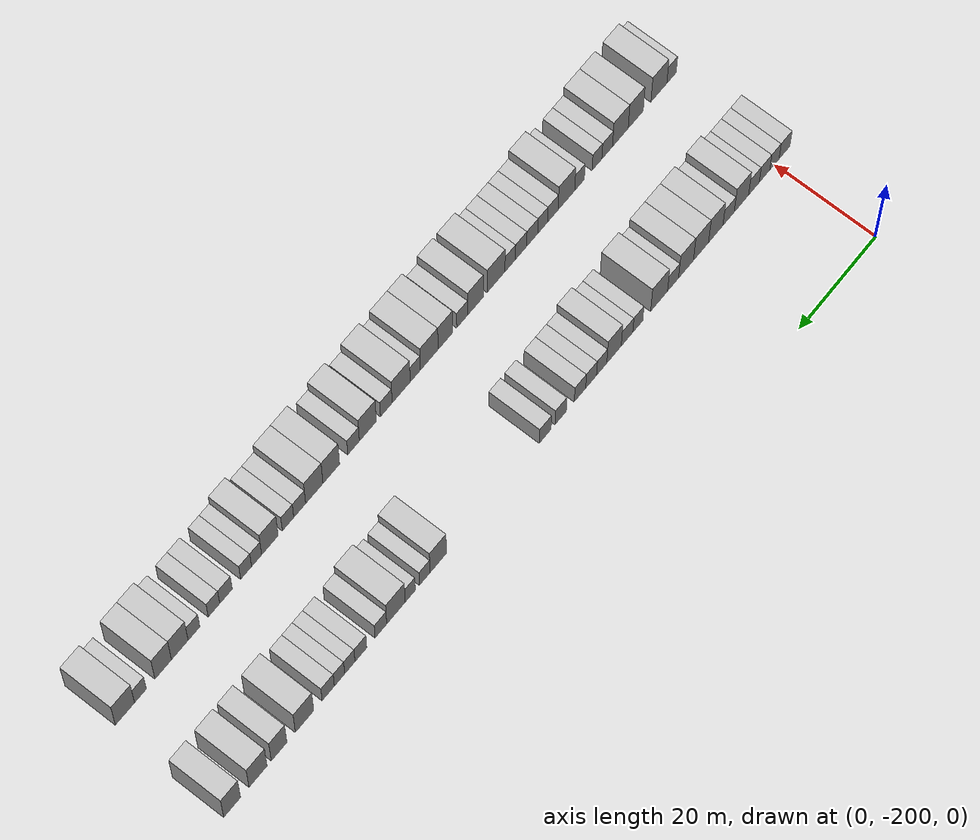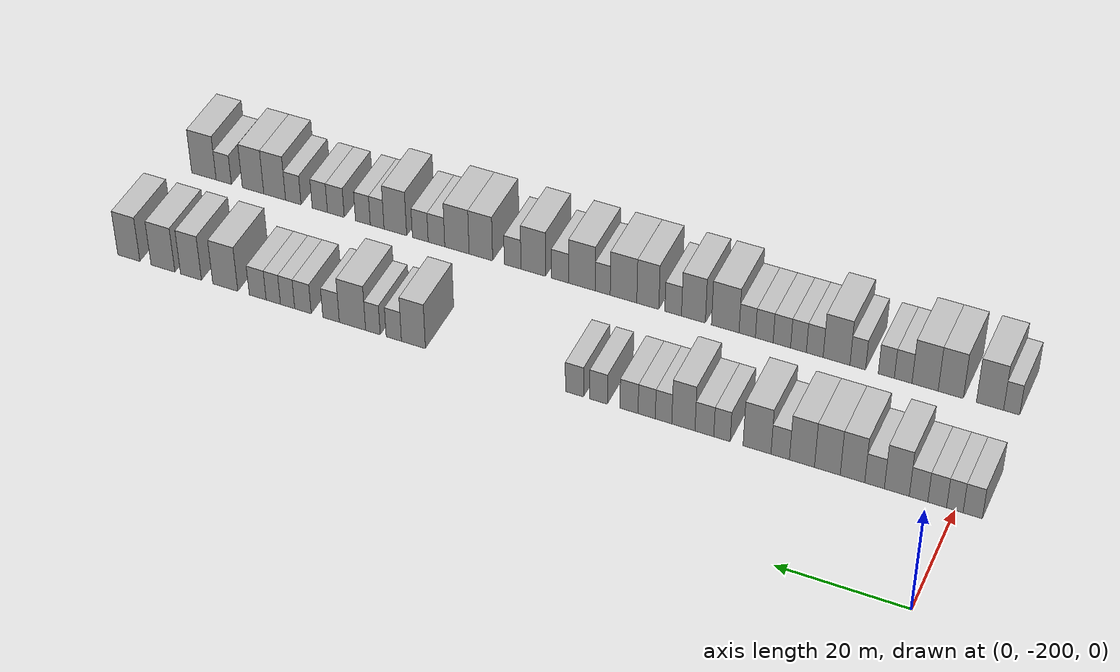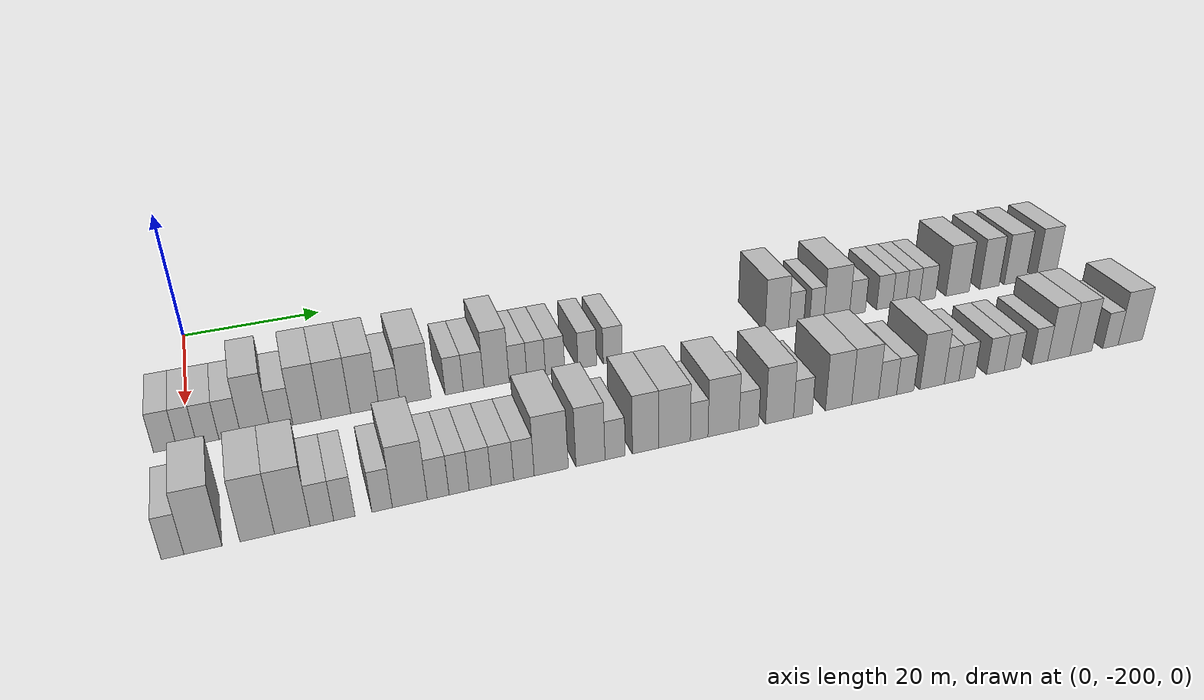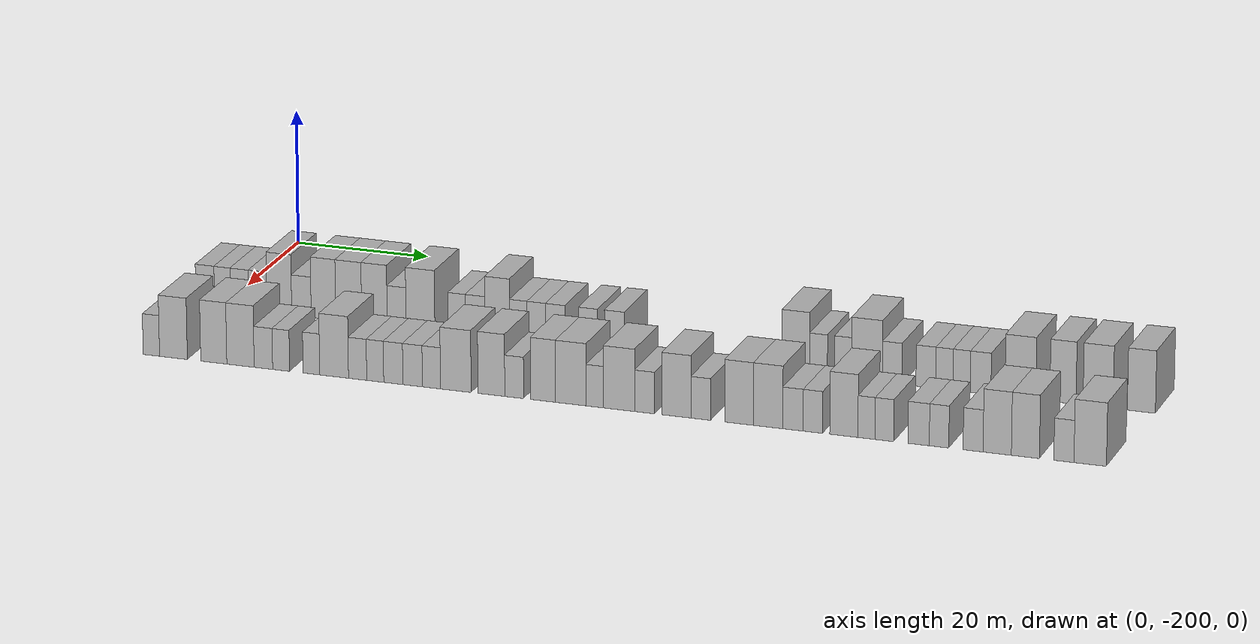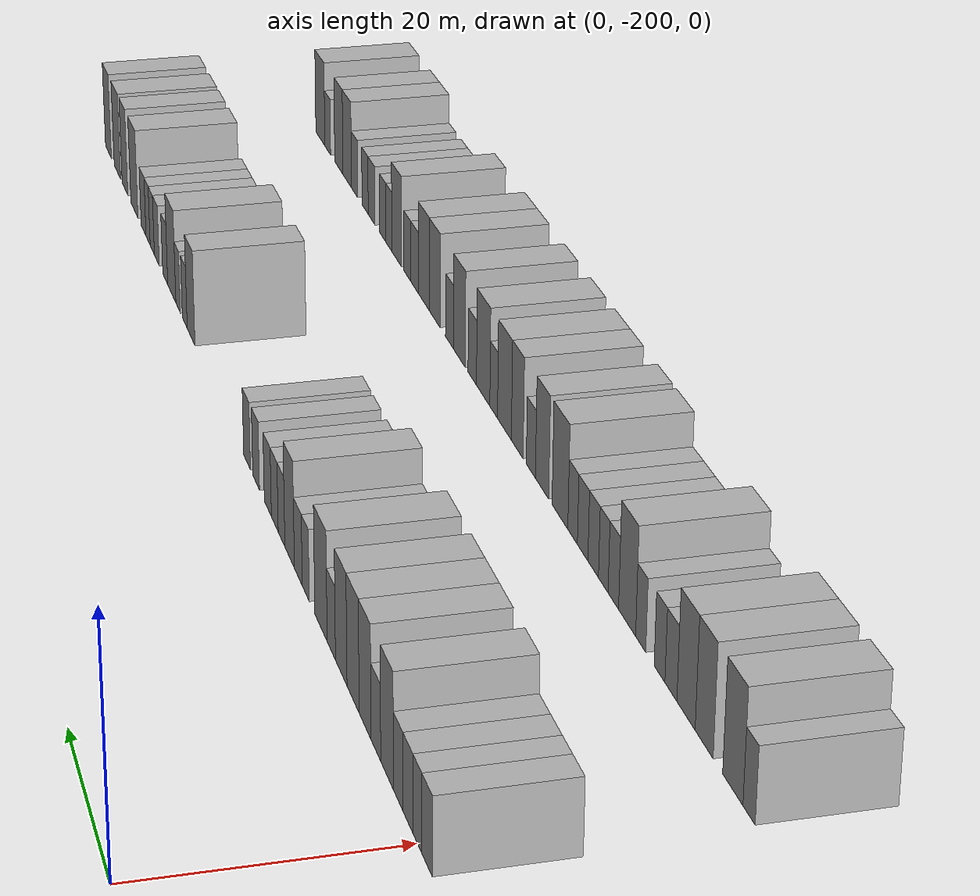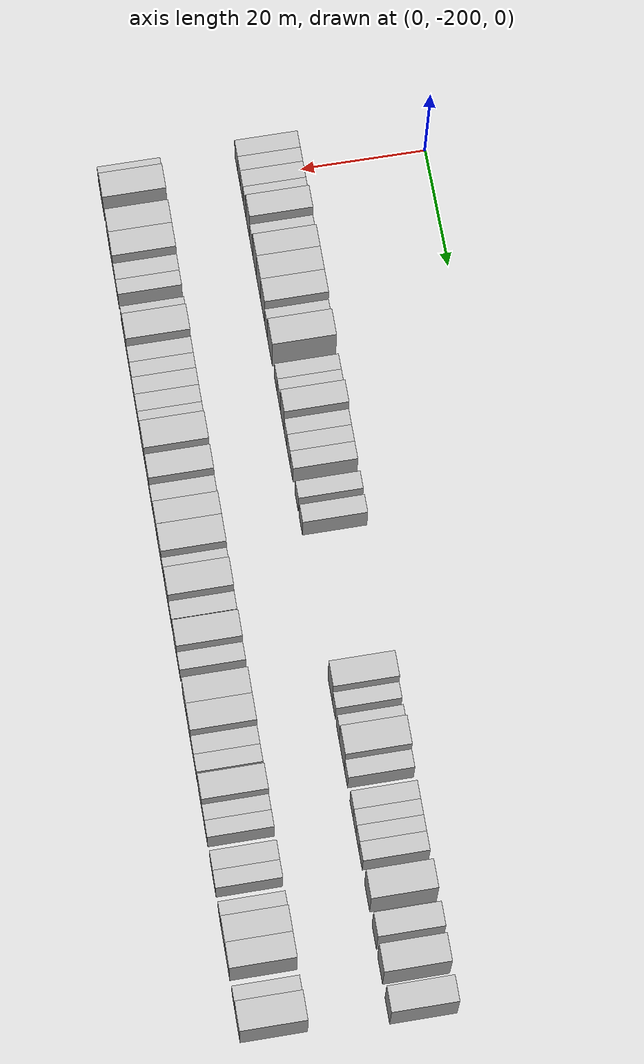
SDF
<sdf version="1.6">
 <world name="default">
  <model name="building_1">
   <static>1</static>
   <pose>25.0000 -202.5751 0 0.000000 0.000000 0.000000</pose>
   <link name="link">
    <pose>0 0 3.00 0 0 0</pose>
    <collision name="collision"><geometry><box><size>10.0000 2.8498 6.0000</size></box></geometry></collision>
    <visual name="visual">
     <cast_shadows>0</cast_shadows>
     <geometry><box><size>10.0000 2.8498 6.0000</size></box></geometry>
     <material>
      <script>
       <uri>model://HANNAS_wall/materials/scripts</uri>
       <uri>model://HANNAS_wall/materials/textures</uri>
       <name>vrc/HANNAS_wall</name>
      </script>
     </material>
    </visual>
   </link>
  </model>
  <model name="building_2">
   <static>1</static>
   <pose>25.0000 -199.9320 0 0.000000 0.000000 0.000000</pose>
   <link name="link">
    <pose>0 0 3.00 0 0 0</pose>
    <collision name="collision"><geometry><box><size>10.0000 2.4364 6.0000</size></box></geometry></collision>
    <visual name="visual">
     <cast_shadows>0</cast_shadows>
     <geometry><box><size>10.0000 2.4364 6.0000</size></box></geometry>
     <material>
      <script>
       <uri>model://HANNAS_wall/materials/scripts</uri>
       <uri>model://HANNAS_wall/materials/textures</uri>
       <name>vrc/HANNAS_wall</name>
      </script>
     </material>
    </visual>
   </link>
  </model>
  <model name="building_3">
   <static>1</static>
   <pose>25.0000 -197.3201 0 0.000000 0.000000 0.000000</pose>
   <link name="link">
    <pose>0 0 3.00 0 0 0</pose>
    <collision name="collision"><geometry><box><size>10.0000 2.7874 6.0000</size></box></geometry></collision>
    <visual name="visual">
     <cast_shadows>0</cast_shadows>
     <geometry><box><size>10.0000 2.7874 6.0000</size></box></geometry>
     <material>
      <script>
       <uri>model://HANNAS_wall/materials/scripts</uri>
       <uri>model://HANNAS_wall/materials/textures</uri>
       <name>vrc/HANNAS_wall</name>
      </script>
     </material>
    </visual>
   </link>
  </model>
  <model name="building_4">
   <static>1</static>
   <pose>25.0000 -194.5444 0 0.000000 0.000000 0.000000</pose>
   <link name="link">
    <pose>0 0 3.00 0 0 0</pose>
    <collision name="collision"><geometry><box><size>10.0000 2.7641 6.0000</size></box></geometry></collision>
    <visual name="visual">
     <cast_shadows>0</cast_shadows>
     <geometry><box><size>10.0000 2.7641 6.0000</size></box></geometry>
     <material>
      <script>
       <uri>model://HANNAS_wall/materials/scripts</uri>
       <uri>model://HANNAS_wall/materials/textures</uri>
       <name>vrc/HANNAS_wall</name>
      </script>
     </material>
    </visual>
   </link>
  </model>
  <model name="building_5">
   <static>1</static>
   <pose>25.0000 -191.2901 0 0.000000 0.000000 0.000000</pose>
   <link name="link">
    <pose>0 0 4.50 0 0 0</pose>
    <collision name="collision"><geometry><box><size>10.0000 3.7444 9.0000</size></box></geometry></collision>
    <visual name="visual">
     <cast_shadows>0</cast_shadows>
     <geometry><box><size>10.0000 3.7444 9.0000</size></box></geometry>
     <material>
      <script>
       <uri>model://HANNAS_wall/materials/scripts</uri>
       <uri>model://HANNAS_wall/materials/textures</uri>
       <name>vrc/HANNAS_wall</name>
      </script>
     </material>
    </visual>
   </link>
  </model>
  <model name="building_6">
   <static>1</static>
   <pose>25.0000 -187.9427 0 0.000000 0.000000 0.000000</pose>
   <link name="link">
    <pose>0 0 3.00 0 0 0</pose>
    <collision name="collision"><geometry><box><size>10.0000 2.9504 6.0000</size></box></geometry></collision>
    <visual name="visual">
     <cast_shadows>0</cast_shadows>
     <geometry><box><size>10.0000 2.9504 6.0000</size></box></geometry>
     <material>
      <script>
       <uri>model://HANNAS_wall/materials/scripts</uri>
       <uri>model://HANNAS_wall/materials/textures</uri>
       <name>vrc/HANNAS_wall</name>
      </script>
     </material>
    </visual>
   </link>
  </model>
  <model name="building_7">
   <static>1</static>
   <pose>25.0000 -184.6122 0 0.000000 0.000000 0.000000</pose>
   <link name="link">
    <pose>0 0 4.50 0 0 0</pose>
    <collision name="collision"><geometry><box><size>10.0000 3.7106 9.0000</size></box></geometry></collision>
    <visual name="visual">
     <cast_shadows>0</cast_shadows>
     <geometry><box><size>10.0000 3.7106 9.0000</size></box></geometry>
     <material>
      <script>
       <uri>model://HANNAS_wall/materials/scripts</uri>
       <uri>model://HANNAS_wall/materials/textures</uri>
       <name>vrc/HANNAS_wall</name>
      </script>
     </material>
    </visual>
   </link>
  </model>
  <model name="building_8">
   <static>1</static>
   <pose>25.0000 -180.7987 0 0.000000 0.000000 0.000000</pose>
   <link name="link">
    <pose>0 0 4.50 0 0 0</pose>
    <collision name="collision"><geometry><box><size>10.0000 3.9165 9.0000</size></box></geometry></collision>
    <visual name="visual">
     <cast_shadows>0</cast_shadows>
     <geometry><box><size>10.0000 3.9165 9.0000</size></box></geometry>
     <material>
      <script>
       <uri>model://HANNAS_wall/materials/scripts</uri>
       <uri>model://HANNAS_wall/materials/textures</uri>
       <name>vrc/HANNAS_wall</name>
      </script>
     </material>
    </visual>
   </link>
  </model>
  <model name="building_9">
   <static>1</static>
   <pose>25.0000 -176.9204 0 0.000000 0.000000 0.000000</pose>
   <link name="link">
    <pose>0 0 4.50 0 0 0</pose>
    <collision name="collision"><geometry><box><size>10.0000 3.8401 9.0000</size></box></geometry></collision>
    <visual name="visual">
     <cast_shadows>0</cast_shadows>
     <geometry><box><size>10.0000 3.8401 9.0000</size></box></geometry>
     <material>
      <script>
       <uri>model://HANNAS_wall/materials/scripts</uri>
       <uri>model://HANNAS_wall/materials/textures</uri>
       <name>vrc/HANNAS_wall</name>
      </script>
     </material>
    </visual>
   </link>
  </model>
  <model name="building_10">
   <static>1</static>
   <pose>25.0000 -173.5863 0 0.000000 0.000000 0.000000</pose>
   <link name="link">
    <pose>0 0 3.00 0 0 0</pose>
    <collision name="collision"><geometry><box><size>10.0000 2.8281 6.0000</size></box></geometry></collision>
    <visual name="visual">
     <cast_shadows>0</cast_shadows>
     <geometry><box><size>10.0000 2.8281 6.0000</size></box></geometry>
     <material>
      <script>
       <uri>model://HANNAS_wall/materials/scripts</uri>
       <uri>model://HANNAS_wall/materials/textures</uri>
       <name>vrc/HANNAS_wall</name>
      </script>
     </material>
    </visual>
   </link>
  </model>
  <model name="building_11">
   <static>1</static>
   <pose>25.0000 -170.0081 0 0.000000 0.000000 0.000000</pose>
   <link name="link">
    <pose>0 0 4.50 0 0 0</pose>
    <collision name="collision"><geometry><box><size>10.0000 4.3283 9.0000</size></box></geometry></collision>
    <visual name="visual">
     <cast_shadows>0</cast_shadows>
     <geometry><box><size>10.0000 4.3283 9.0000</size></box></geometry>
     <material>
      <script>
       <uri>model://HANNAS_wall/materials/scripts</uri>
       <uri>model://HANNAS_wall/materials/textures</uri>
       <name>vrc/HANNAS_wall</name>
      </script>
     </material>
    </visual>
   </link>
  </model>
  <model name="building_12">
   <static>1</static>
   <pose>25.0000 -164.5643 0 0.000000 0.000000 0.000000</pose>
   <link name="link">
    <pose>0 0 3.00 0 0 0</pose>
    <collision name="collision"><geometry><box><size>10.0000 2.5592 6.0000</size></box></geometry></collision>
    <visual name="visual">
     <cast_shadows>0</cast_shadows>
     <geometry><box><size>10.0000 2.5592 6.0000</size></box></geometry>
     <material>
      <script>
       <uri>model://HANNAS_wall/materials/scripts</uri>
       <uri>model://HANNAS_wall/materials/textures</uri>
       <name>vrc/HANNAS_wall</name>
      </script>
     </material>
    </visual>
   </link>
  </model>
  <model name="building_13">
   <static>1</static>
   <pose>25.0000 -161.8121 0 0.000000 0.000000 0.000000</pose>
   <link name="link">
    <pose>0 0 3.00 0 0 0</pose>
    <collision name="collision"><geometry><box><size>10.0000 2.9453 6.0000</size></box></geometry></collision>
    <visual name="visual">
     <cast_shadows>0</cast_shadows>
     <geometry><box><size>10.0000 2.9453 6.0000</size></box></geometry>
     <material>
      <script>
       <uri>model://HANNAS_wall/materials/scripts</uri>
       <uri>model://HANNAS_wall/materials/textures</uri>
       <name>vrc/HANNAS_wall</name>
      </script>
     </material>
    </visual>
   </link>
  </model>
  <model name="building_14">
   <static>1</static>
   <pose>25.0000 -158.5109 0 0.000000 0.000000 0.000000</pose>
   <link name="link">
    <pose>0 0 4.50 0 0 0</pose>
    <collision name="collision"><geometry><box><size>10.0000 3.6571 9.0000</size></box></geometry></collision>
    <visual name="visual">
     <cast_shadows>0</cast_shadows>
     <geometry><box><size>10.0000 3.6571 9.0000</size></box></geometry>
     <material>
      <script>
       <uri>model://HANNAS_wall/materials/scripts</uri>
       <uri>model://HANNAS_wall/materials/textures</uri>
       <name>vrc/HANNAS_wall</name>
      </script>
     </material>
    </visual>
   </link>
  </model>
  <model name="building_15">
   <static>1</static>
   <pose>25.0000 -155.3823 0 0.000000 0.000000 0.000000</pose>
   <link name="link">
    <pose>0 0 3.00 0 0 0</pose>
    <collision name="collision"><geometry><box><size>10.0000 2.6001 6.0000</size></box></geometry></collision>
    <visual name="visual">
     <cast_shadows>0</cast_shadows>
     <geometry><box><size>10.0000 2.6001 6.0000</size></box></geometry>
     <material>
      <script>
       <uri>model://HANNAS_wall/materials/scripts</uri>
       <uri>model://HANNAS_wall/materials/textures</uri>
       <name>vrc/HANNAS_wall</name>
      </script>
     </material>
    </visual>
   </link>
  </model>
  <model name="building_16">
   <static>1</static>
   <pose>25.0000 -152.7136 0 0.000000 0.000000 0.000000</pose>
   <link name="link">
    <pose>0 0 3.00 0 0 0</pose>
    <collision name="collision"><geometry><box><size>10.0000 2.7374 6.0000</size></box></geometry></collision>
    <visual name="visual">
     <cast_shadows>0</cast_shadows>
     <geometry><box><size>10.0000 2.7374 6.0000</size></box></geometry>
     <material>
      <script>
       <uri>model://HANNAS_wall/materials/scripts</uri>
       <uri>model://HANNAS_wall/materials/textures</uri>
       <name>vrc/HANNAS_wall</name>
      </script>
     </material>
    </visual>
   </link>
  </model>
  <model name="building_17">
   <static>1</static>
   <pose>25.0000 -149.9025 0 0.000000 0.000000 0.000000</pose>
   <link name="link">
    <pose>0 0 3.00 0 0 0</pose>
    <collision name="collision"><geometry><box><size>10.0000 2.8847 6.0000</size></box></geometry></collision>
    <visual name="visual">
     <cast_shadows>0</cast_shadows>
     <geometry><box><size>10.0000 2.8847 6.0000</size></box></geometry>
     <material>
      <script>
       <uri>model://HANNAS_wall/materials/scripts</uri>
       <uri>model://HANNAS_wall/materials/textures</uri>
       <name>vrc/HANNAS_wall</name>
      </script>
     </material>
    </visual>
   </link>
  </model>
  <model name="building_18">
   <static>1</static>
   <pose>25.0000 -145.0434 0 0.000000 0.000000 0.000000</pose>
   <link name="link">
    <pose>0 0 3.00 0 0 0</pose>
    <collision name="collision"><geometry><box><size>10.0000 2.8335 6.0000</size></box></geometry></collision>
    <visual name="visual">
     <cast_shadows>0</cast_shadows>
     <geometry><box><size>10.0000 2.8335 6.0000</size></box></geometry>
     <material>
      <script>
       <uri>model://HANNAS_wall/materials/scripts</uri>
       <uri>model://HANNAS_wall/materials/textures</uri>
       <name>vrc/HANNAS_wall</name>
      </script>
     </material>
    </visual>
   </link>
  </model>
  <model name="building_19">
   <static>1</static>
   <pose>25.0000 -141.1644 0 0.000000 0.000000 0.000000</pose>
   <link name="link">
    <pose>0 0 3.00 0 0 0</pose>
    <collision name="collision"><geometry><box><size>10.0000 2.9245 6.0000</size></box></geometry></collision>
    <visual name="visual">
     <cast_shadows>0</cast_shadows>
     <geometry><box><size>10.0000 2.9245 6.0000</size></box></geometry>
     <material>
      <script>
       <uri>model://HANNAS_wall/materials/scripts</uri>
       <uri>model://HANNAS_wall/materials/textures</uri>
       <name>vrc/HANNAS_wall</name>
      </script>
     </material>
    </visual>
   </link>
  </model>
  <model name="building_20">
   <static>1</static>
   <pose>25.0000 -114.6711 0 0.000000 0.000000 0.000000</pose>
   <link name="link">
    <pose>0 0 4.50 0 0 0</pose>
    <collision name="collision"><geometry><box><size>10.0000 4.0207 9.0000</size></box></geometry></collision>
    <visual name="visual">
     <cast_shadows>0</cast_shadows>
     <geometry><box><size>10.0000 4.0207 9.0000</size></box></geometry>
     <material>
      <script>
       <uri>model://HANNAS_wall/materials/scripts</uri>
       <uri>model://HANNAS_wall/materials/textures</uri>
       <name>vrc/HANNAS_wall</name>
      </script>
     </material>
    </visual>
   </link>
  </model>
  <model name="building_21">
   <static>1</static>
   <pose>25.0000 -111.3727 0 0.000000 0.000000 0.000000</pose>
   <link name="link">
    <pose>0 0 3.00 0 0 0</pose>
    <collision name="collision"><geometry><box><size>10.0000 2.5760 6.0000</size></box></geometry></collision>
    <visual name="visual">
     <cast_shadows>0</cast_shadows>
     <geometry><box><size>10.0000 2.5760 6.0000</size></box></geometry>
     <material>
      <script>
       <uri>model://HANNAS_wall/materials/scripts</uri>
       <uri>model://HANNAS_wall/materials/textures</uri>
       <name>vrc/HANNAS_wall</name>
      </script>
     </material>
    </visual>
   </link>
  </model>
  <model name="building_22">
   <static>1</static>
   <pose>25.0000 -107.8508 0 0.000000 0.000000 0.000000</pose>
   <link name="link">
    <pose>0 0 3.00 0 0 0</pose>
    <collision name="collision"><geometry><box><size>10.0000 2.4678 6.0000</size></box></geometry></collision>
    <visual name="visual">
     <cast_shadows>0</cast_shadows>
     <geometry><box><size>10.0000 2.4678 6.0000</size></box></geometry>
     <material>
      <script>
       <uri>model://HANNAS_wall/materials/scripts</uri>
       <uri>model://HANNAS_wall/materials/textures</uri>
       <name>vrc/HANNAS_wall</name>
      </script>
     </material>
    </visual>
   </link>
  </model>
  <model name="building_23">
   <static>1</static>
   <pose>25.0000 -104.3762 0 0.000000 0.000000 0.000000</pose>
   <link name="link">
    <pose>0 0 4.50 0 0 0</pose>
    <collision name="collision"><geometry><box><size>10.0000 4.4815 9.0000</size></box></geometry></collision>
    <visual name="visual">
     <cast_shadows>0</cast_shadows>
     <geometry><box><size>10.0000 4.4815 9.0000</size></box></geometry>
     <material>
      <script>
       <uri>model://HANNAS_wall/materials/scripts</uri>
       <uri>model://HANNAS_wall/materials/textures</uri>
       <name>vrc/HANNAS_wall</name>
      </script>
     </material>
    </visual>
   </link>
  </model>
  <model name="building_24">
   <static>1</static>
   <pose>25.0000 -100.7256 0 0.000000 0.000000 0.000000</pose>
   <link name="link">
    <pose>0 0 3.00 0 0 0</pose>
    <collision name="collision"><geometry><box><size>10.0000 2.8197 6.0000</size></box></geometry></collision>
    <visual name="visual">
     <cast_shadows>0</cast_shadows>
     <geometry><box><size>10.0000 2.8197 6.0000</size></box></geometry>
     <material>
      <script>
       <uri>model://HANNAS_wall/materials/scripts</uri>
       <uri>model://HANNAS_wall/materials/textures</uri>
       <name>vrc/HANNAS_wall</name>
      </script>
     </material>
    </visual>
   </link>
  </model>
  <model name="building_25">
   <static>1</static>
   <pose>25.0000 -95.8948 0 0.000000 0.000000 0.000000</pose>
   <link name="link">
    <pose>0 0 3.00 0 0 0</pose>
    <collision name="collision"><geometry><box><size>10.0000 2.8417 6.0000</size></box></geometry></collision>
    <visual name="visual">
     <cast_shadows>0</cast_shadows>
     <geometry><box><size>10.0000 2.8417 6.0000</size></box></geometry>
     <material>
      <script>
       <uri>model://HANNAS_wall/materials/scripts</uri>
       <uri>model://HANNAS_wall/materials/textures</uri>
       <name>vrc/HANNAS_wall</name>
      </script>
     </material>
    </visual>
   </link>
  </model>
  <model name="building_26">
   <static>1</static>
   <pose>25.0000 -93.2428 0 0.000000 0.000000 0.000000</pose>
   <link name="link">
    <pose>0 0 3.00 0 0 0</pose>
    <collision name="collision"><geometry><box><size>10.0000 2.4623 6.0000</size></box></geometry></collision>
    <visual name="visual">
     <cast_shadows>0</cast_shadows>
     <geometry><box><size>10.0000 2.4623 6.0000</size></box></geometry>
     <material>
      <script>
       <uri>model://HANNAS_wall/materials/scripts</uri>
       <uri>model://HANNAS_wall/materials/textures</uri>
       <name>vrc/HANNAS_wall</name>
      </script>
     </material>
    </visual>
   </link>
  </model>
  <model name="building_27">
   <static>1</static>
   <pose>25.0000 -90.7668 0 0.000000 0.000000 0.000000</pose>
   <link name="link">
    <pose>0 0 3.00 0 0 0</pose>
    <collision name="collision"><geometry><box><size>10.0000 2.4897 6.0000</size></box></geometry></collision>
    <visual name="visual">
     <cast_shadows>0</cast_shadows>
     <geometry><box><size>10.0000 2.4897 6.0000</size></box></geometry>
     <material>
      <script>
       <uri>model://HANNAS_wall/materials/scripts</uri>
       <uri>model://HANNAS_wall/materials/textures</uri>
       <name>vrc/HANNAS_wall</name>
      </script>
     </material>
    </visual>
   </link>
  </model>
  <model name="building_28">
   <static>1</static>
   <pose>25.0000 -88.0541 0 0.000000 0.000000 0.000000</pose>
   <link name="link">
    <pose>0 0 3.00 0 0 0</pose>
    <collision name="collision"><geometry><box><size>10.0000 2.9357 6.0000</size></box></geometry></collision>
    <visual name="visual">
     <cast_shadows>0</cast_shadows>
     <geometry><box><size>10.0000 2.9357 6.0000</size></box></geometry>
     <material>
      <script>
       <uri>model://HANNAS_wall/materials/scripts</uri>
       <uri>model://HANNAS_wall/materials/textures</uri>
       <name>vrc/HANNAS_wall</name>
      </script>
     </material>
    </visual>
   </link>
  </model>
  <model name="building_29">
   <static>1</static>
   <pose>25.0000 -82.3936 0 0.000000 0.000000 0.000000</pose>
   <link name="link">
    <pose>0 0 4.50 0 0 0</pose>
    <collision name="collision"><geometry><box><size>10.0000 4.3852 9.0000</size></box></geometry></collision>
    <visual name="visual">
     <cast_shadows>0</cast_shadows>
     <geometry><box><size>10.0000 4.3852 9.0000</size></box></geometry>
     <material>
      <script>
       <uri>model://HANNAS_wall/materials/scripts</uri>
       <uri>model://HANNAS_wall/materials/textures</uri>
       <name>vrc/HANNAS_wall</name>
      </script>
     </material>
    </visual>
   </link>
  </model>
  <model name="building_30">
   <static>1</static>
   <pose>25.0000 -76.3492 0 0.000000 0.000000 0.000000</pose>
   <link name="link">
    <pose>0 0 4.50 0 0 0</pose>
    <collision name="collision"><geometry><box><size>10.0000 3.7037 9.0000</size></box></geometry></collision>
    <visual name="visual">
     <cast_shadows>0</cast_shadows>
     <geometry><box><size>10.0000 3.7037 9.0000</size></box></geometry>
     <material>
      <script>
       <uri>model://HANNAS_wall/materials/scripts</uri>
       <uri>model://HANNAS_wall/materials/textures</uri>
       <name>vrc/HANNAS_wall</name>
      </script>
     </material>
    </visual>
   </link>
  </model>
  <model name="building_31">
   <static>1</static>
   <pose>25.0000 -71.3695 0 0.000000 0.000000 0.000000</pose>
   <link name="link">
    <pose>0 0 4.50 0 0 0</pose>
    <collision name="collision"><geometry><box><size>10.0000 4.2556 9.0000</size></box></geometry></collision>
    <visual name="visual">
     <cast_shadows>0</cast_shadows>
     <geometry><box><size>10.0000 4.2556 9.0000</size></box></geometry>
     <material>
      <script>
       <uri>model://HANNAS_wall/materials/scripts</uri>
       <uri>model://HANNAS_wall/materials/textures</uri>
       <name>vrc/HANNAS_wall</name>
      </script>
     </material>
    </visual>
   </link>
  </model>
  <model name="building_32">
   <static>1</static>
   <pose>25.0000 -65.2629 0 0.000000 0.000000 0.000000</pose>
   <link name="link">
    <pose>0 0 4.50 0 0 0</pose>
    <collision name="collision"><geometry><box><size>10.0000 3.9575 9.0000</size></box></geometry></collision>
    <visual name="visual">
     <cast_shadows>0</cast_shadows>
     <geometry><box><size>10.0000 3.9575 9.0000</size></box></geometry>
     <material>
      <script>
       <uri>model://HANNAS_wall/materials/scripts</uri>
       <uri>model://HANNAS_wall/materials/textures</uri>
       <name>vrc/HANNAS_wall</name>
      </script>
     </material>
    </visual>
   </link>
  </model>
  <model name="building_103">
   <static>1</static>
   <pose>47.0000 -201.7735 0 0.000000 0.000000 0.000000</pose>
   <link name="link">
    <pose>0 0 3.00 0 0 0</pose>
    <collision name="collision"><geometry><box><size>10.0000 2.4530 6.0000</size></box></geometry></collision>
    <visual name="visual">
     <cast_shadows>0</cast_shadows>
     <geometry><box><size>10.0000 2.4530 6.0000</size></box></geometry>
     <material>
      <script>
       <uri>model://HANNAS_wall/materials/scripts</uri>
       <uri>model://HANNAS_wall/materials/textures</uri>
       <name>vrc/HANNAS_wall</name>
      </script>
     </material>
    </visual>
   </link>
  </model>
  <model name="building_104">
   <static>1</static>
   <pose>47.0000 -198.4619 0 0.000000 0.000000 0.000000</pose>
   <link name="link">
    <pose>0 0 4.50 0 0 0</pose>
    <collision name="collision"><geometry><box><size>10.0000 4.1702 9.0000</size></box></geometry></collision>
    <visual name="visual">
     <cast_shadows>0</cast_shadows>
     <geometry><box><size>10.0000 4.1702 9.0000</size></box></geometry>
     <material>
      <script>
       <uri>model://HANNAS_wall/materials/scripts</uri>
       <uri>model://HANNAS_wall/materials/textures</uri>
       <name>vrc/HANNAS_wall</name>
      </script>
     </material>
    </visual>
   </link>
  </model>
  <model name="building_105">
   <static>1</static>
   <pose>47.0000 -192.4269 0 0.000000 0.000000 0.000000</pose>
   <link name="link">
    <pose>0 0 4.50 0 0 0</pose>
    <collision name="collision"><geometry><box><size>10.0000 3.8998 9.0000</size></box></geometry></collision>
    <visual name="visual">
     <cast_shadows>0</cast_shadows>
     <geometry><box><size>10.0000 3.8998 9.0000</size></box></geometry>
     <material>
      <script>
       <uri>model://HANNAS_wall/materials/scripts</uri>
       <uri>model://HANNAS_wall/materials/textures</uri>
       <name>vrc/HANNAS_wall</name>
      </script>
     </material>
    </visual>
   </link>
  </model>
  <model name="building_106">
   <static>1</static>
   <pose>47.0000 -188.4391 0 0.000000 0.000000 0.000000</pose>
   <link name="link">
    <pose>0 0 4.50 0 0 0</pose>
    <collision name="collision"><geometry><box><size>10.0000 4.0759 9.0000</size></box></geometry></collision>
    <visual name="visual">
     <cast_shadows>0</cast_shadows>
     <geometry><box><size>10.0000 4.0759 9.0000</size></box></geometry>
     <material>
      <script>
       <uri>model://HANNAS_wall/materials/scripts</uri>
       <uri>model://HANNAS_wall/materials/textures</uri>
       <name>vrc/HANNAS_wall</name>
      </script>
     </material>
    </visual>
   </link>
  </model>
  <model name="building_107">
   <static>1</static>
   <pose>47.0000 -185.0261 0 0.000000 0.000000 0.000000</pose>
   <link name="link">
    <pose>0 0 3.00 0 0 0</pose>
    <collision name="collision"><geometry><box><size>10.0000 2.7501 6.0000</size></box></geometry></collision>
    <visual name="visual">
     <cast_shadows>0</cast_shadows>
     <geometry><box><size>10.0000 2.7501 6.0000</size></box></geometry>
     <material>
      <script>
       <uri>model://HANNAS_wall/materials/scripts</uri>
       <uri>model://HANNAS_wall/materials/textures</uri>
       <name>vrc/HANNAS_wall</name>
      </script>
     </material>
    </visual>
   </link>
  </model>
  <model name="building_108">
   <static>1</static>
   <pose>47.0000 -182.3914 0 0.000000 0.000000 0.000000</pose>
   <link name="link">
    <pose>0 0 3.00 0 0 0</pose>
    <collision name="collision"><geometry><box><size>10.0000 2.5193 6.0000</size></box></geometry></collision>
    <visual name="visual">
     <cast_shadows>0</cast_shadows>
     <geometry><box><size>10.0000 2.5193 6.0000</size></box></geometry>
     <material>
      <script>
       <uri>model://HANNAS_wall/materials/scripts</uri>
       <uri>model://HANNAS_wall/materials/textures</uri>
       <name>vrc/HANNAS_wall</name>
      </script>
     </material>
    </visual>
   </link>
  </model>
  <model name="building_109">
   <static>1</static>
   <pose>47.0000 -177.9011 0 0.000000 0.000000 0.000000</pose>
   <link name="link">
    <pose>0 0 3.00 0 0 0</pose>
    <collision name="collision"><geometry><box><size>10.0000 2.4614 6.0000</size></box></geometry></collision>
    <visual name="visual">
     <cast_shadows>0</cast_shadows>
     <geometry><box><size>10.0000 2.4614 6.0000</size></box></geometry>
     <material>
      <script>
       <uri>model://HANNAS_wall/materials/scripts</uri>
       <uri>model://HANNAS_wall/materials/textures</uri>
       <name>vrc/HANNAS_wall</name>
      </script>
     </material>
    </visual>
   </link>
  </model>
  <model name="building_110">
   <static>1</static>
   <pose>47.0000 -174.5442 0 0.000000 0.000000 0.000000</pose>
   <link name="link">
    <pose>0 0 4.50 0 0 0</pose>
    <collision name="collision"><geometry><box><size>10.0000 4.2523 9.0000</size></box></geometry></collision>
    <visual name="visual">
     <cast_shadows>0</cast_shadows>
     <geometry><box><size>10.0000 4.2523 9.0000</size></box></geometry>
     <material>
      <script>
       <uri>model://HANNAS_wall/materials/scripts</uri>
       <uri>model://HANNAS_wall/materials/textures</uri>
       <name>vrc/HANNAS_wall</name>
      </script>
     </material>
    </visual>
   </link>
  </model>
  <model name="building_111">
   <static>1</static>
   <pose>47.0000 -171.0774 0 0.000000 0.000000 0.000000</pose>
   <link name="link">
    <pose>0 0 3.00 0 0 0</pose>
    <collision name="collision"><geometry><box><size>10.0000 2.6815 6.0000</size></box></geometry></collision>
    <visual name="visual">
     <cast_shadows>0</cast_shadows>
     <geometry><box><size>10.0000 2.6815 6.0000</size></box></geometry>
     <material>
      <script>
       <uri>model://HANNAS_wall/materials/scripts</uri>
       <uri>model://HANNAS_wall/materials/textures</uri>
       <name>vrc/HANNAS_wall</name>
      </script>
     </material>
    </visual>
   </link>
  </model>
  <model name="building_112">
   <static>1</static>
   <pose>47.0000 -168.4792 0 0.000000 0.000000 0.000000</pose>
   <link name="link">
    <pose>0 0 3.00 0 0 0</pose>
    <collision name="collision"><geometry><box><size>10.0000 2.5148 6.0000</size></box></geometry></collision>
    <visual name="visual">
     <cast_shadows>0</cast_shadows>
     <geometry><box><size>10.0000 2.5148 6.0000</size></box></geometry>
     <material>
      <script>
       <uri>model://HANNAS_wall/materials/scripts</uri>
       <uri>model://HANNAS_wall/materials/textures</uri>
       <name>vrc/HANNAS_wall</name>
      </script>
     </material>
    </visual>
   </link>
  </model>
  <model name="building_113">
   <static>1</static>
   <pose>47.0000 -165.8166 0 0.000000 0.000000 0.000000</pose>
   <link name="link">
    <pose>0 0 3.00 0 0 0</pose>
    <collision name="collision"><geometry><box><size>10.0000 2.8105 6.0000</size></box></geometry></collision>
    <visual name="visual">
     <cast_shadows>0</cast_shadows>
     <geometry><box><size>10.0000 2.8105 6.0000</size></box></geometry>
     <material>
      <script>
       <uri>model://HANNAS_wall/materials/scripts</uri>
       <uri>model://HANNAS_wall/materials/textures</uri>
       <name>vrc/HANNAS_wall</name>
      </script>
     </material>
    </visual>
   </link>
  </model>
  <model name="building_114">
   <static>1</static>
   <pose>47.0000 -162.9814 0 0.000000 0.000000 0.000000</pose>
   <link name="link">
    <pose>0 0 3.00 0 0 0</pose>
    <collision name="collision"><geometry><box><size>10.0000 2.8599 6.0000</size></box></geometry></collision>
    <visual name="visual">
     <cast_shadows>0</cast_shadows>
     <geometry><box><size>10.0000 2.8599 6.0000</size></box></geometry>
     <material>
      <script>
       <uri>model://HANNAS_wall/materials/scripts</uri>
       <uri>model://HANNAS_wall/materials/textures</uri>
       <name>vrc/HANNAS_wall</name>
      </script>
     </material>
    </visual>
   </link>
  </model>
  <model name="building_115">
   <static>1</static>
   <pose>47.0000 -160.2257 0 0.000000 0.000000 0.000000</pose>
   <link name="link">
    <pose>0 0 3.00 0 0 0</pose>
    <collision name="collision"><geometry><box><size>10.0000 2.6515 6.0000</size></box></geometry></collision>
    <visual name="visual">
     <cast_shadows>0</cast_shadows>
     <geometry><box><size>10.0000 2.6515 6.0000</size></box></geometry>
     <material>
      <script>
       <uri>model://HANNAS_wall/materials/scripts</uri>
       <uri>model://HANNAS_wall/materials/textures</uri>
       <name>vrc/HANNAS_wall</name>
      </script>
     </material>
    </visual>
   </link>
  </model>
  <model name="building_116">
   <static>1</static>
   <pose>47.0000 -156.6583 0 0.000000 0.000000 0.000000</pose>
   <link name="link">
    <pose>0 0 4.50 0 0 0</pose>
    <collision name="collision"><geometry><box><size>10.0000 4.4832 9.0000</size></box></geometry></collision>
    <visual name="visual">
     <cast_shadows>0</cast_shadows>
     <geometry><box><size>10.0000 4.4832 9.0000</size></box></geometry>
     <material>
      <script>
       <uri>model://HANNAS_wall/materials/scripts</uri>
       <uri>model://HANNAS_wall/materials/textures</uri>
       <name>vrc/HANNAS_wall</name>
      </script>
     </material>
    </visual>
   </link>
  </model>
  <model name="building_117">
   <static>1</static>
   <pose>47.0000 -151.4614 0 0.000000 0.000000 0.000000</pose>
   <link name="link">
    <pose>0 0 4.50 0 0 0</pose>
    <collision name="collision"><geometry><box><size>10.0000 3.9107 9.0000</size></box></geometry></collision>
    <visual name="visual">
     <cast_shadows>0</cast_shadows>
     <geometry><box><size>10.0000 3.9107 9.0000</size></box></geometry>
     <material>
      <script>
       <uri>model://HANNAS_wall/materials/scripts</uri>
       <uri>model://HANNAS_wall/materials/textures</uri>
       <name>vrc/HANNAS_wall</name>
      </script>
     </material>
    </visual>
   </link>
  </model>
  <model name="building_118">
   <static>1</static>
   <pose>47.0000 -148.1375 0 0.000000 0.000000 0.000000</pose>
   <link name="link">
    <pose>0 0 3.00 0 0 0</pose>
    <collision name="collision"><geometry><box><size>10.0000 2.7369 6.0000</size></box></geometry></collision>
    <visual name="visual">
     <cast_shadows>0</cast_shadows>
     <geometry><box><size>10.0000 2.7369 6.0000</size></box></geometry>
     <material>
      <script>
       <uri>model://HANNAS_wall/materials/scripts</uri>
       <uri>model://HANNAS_wall/materials/textures</uri>
       <name>vrc/HANNAS_wall</name>
      </script>
     </material>
    </visual>
   </link>
  </model>
  <model name="building_119">
   <static>1</static>
   <pose>47.0000 -143.9451 0 0.000000 0.000000 0.000000</pose>
   <link name="link">
    <pose>0 0 4.50 0 0 0</pose>
    <collision name="collision"><geometry><box><size>10.0000 3.6480 9.0000</size></box></geometry></collision>
    <visual name="visual">
     <cast_shadows>0</cast_shadows>
     <geometry><box><size>10.0000 3.6480 9.0000</size></box></geometry>
     <material>
      <script>
       <uri>model://HANNAS_wall/materials/scripts</uri>
       <uri>model://HANNAS_wall/materials/textures</uri>
       <name>vrc/HANNAS_wall</name>
      </script>
     </material>
    </visual>
   </link>
  </model>
  <model name="building_120">
   <static>1</static>
   <pose>47.0000 -139.9086 0 0.000000 0.000000 0.000000</pose>
   <link name="link">
    <pose>0 0 4.50 0 0 0</pose>
    <collision name="collision"><geometry><box><size>10.0000 4.4248 9.0000</size></box></geometry></collision>
    <visual name="visual">
     <cast_shadows>0</cast_shadows>
     <geometry><box><size>10.0000 4.4248 9.0000</size></box></geometry>
     <material>
      <script>
       <uri>model://HANNAS_wall/materials/scripts</uri>
       <uri>model://HANNAS_wall/materials/textures</uri>
       <name>vrc/HANNAS_wall</name>
      </script>
     </material>
    </visual>
   </link>
  </model>
  <model name="building_121">
   <static>1</static>
   <pose>47.0000 -136.4412 0 0.000000 0.000000 0.000000</pose>
   <link name="link">
    <pose>0 0 3.00 0 0 0</pose>
    <collision name="collision"><geometry><box><size>10.0000 2.5099 6.0000</size></box></geometry></collision>
    <visual name="visual">
     <cast_shadows>0</cast_shadows>
     <geometry><box><size>10.0000 2.5099 6.0000</size></box></geometry>
     <material>
      <script>
       <uri>model://HANNAS_wall/materials/scripts</uri>
       <uri>model://HANNAS_wall/materials/textures</uri>
       <name>vrc/HANNAS_wall</name>
      </script>
     </material>
    </visual>
   </link>
  </model>
  <model name="building_122">
   <static>1</static>
   <pose>47.0000 -132.9473 0 0.000000 0.000000 0.000000</pose>
   <link name="link">
    <pose>0 0 4.50 0 0 0</pose>
    <collision name="collision"><geometry><box><size>10.0000 4.4780 9.0000</size></box></geometry></collision>
    <visual name="visual">
     <cast_shadows>0</cast_shadows>
     <geometry><box><size>10.0000 4.4780 9.0000</size></box></geometry>
     <material>
      <script>
       <uri>model://HANNAS_wall/materials/scripts</uri>
       <uri>model://HANNAS_wall/materials/textures</uri>
       <name>vrc/HANNAS_wall</name>
      </script>
     </material>
    </visual>
   </link>
  </model>
  <model name="building_123">
   <static>1</static>
   <pose>47.0000 -129.2615 0 0.000000 0.000000 0.000000</pose>
   <link name="link">
    <pose>0 0 3.00 0 0 0</pose>
    <collision name="collision"><geometry><box><size>10.0000 2.8936 6.0000</size></box></geometry></collision>
    <visual name="visual">
     <cast_shadows>0</cast_shadows>
     <geometry><box><size>10.0000 2.8936 6.0000</size></box></geometry>
     <material>
      <script>
       <uri>model://HANNAS_wall/materials/scripts</uri>
       <uri>model://HANNAS_wall/materials/textures</uri>
       <name>vrc/HANNAS_wall</name>
      </script>
     </material>
    </visual>
   </link>
  </model>
  <model name="building_124">
   <static>1</static>
   <pose>47.0000 -124.7250 0 0.000000 0.000000 0.000000</pose>
   <link name="link">
    <pose>0 0 4.50 0 0 0</pose>
    <collision name="collision"><geometry><box><size>10.0000 4.1793 9.0000</size></box></geometry></collision>
    <visual name="visual">
     <cast_shadows>0</cast_shadows>
     <geometry><box><size>10.0000 4.1793 9.0000</size></box></geometry>
     <material>
      <script>
       <uri>model://HANNAS_wall/materials/scripts</uri>
       <uri>model://HANNAS_wall/materials/textures</uri>
       <name>vrc/HANNAS_wall</name>
      </script>
     </material>
    </visual>
   </link>
  </model>
  <model name="building_125">
   <static>1</static>
   <pose>47.0000 -121.2087 0 0.000000 0.000000 0.000000</pose>
   <link name="link">
    <pose>0 0 3.00 0 0 0</pose>
    <collision name="collision"><geometry><box><size>10.0000 2.8533 6.0000</size></box></geometry></collision>
    <visual name="visual">
     <cast_shadows>0</cast_shadows>
     <geometry><box><size>10.0000 2.8533 6.0000</size></box></geometry>
     <material>
      <script>
       <uri>model://HANNAS_wall/materials/scripts</uri>
       <uri>model://HANNAS_wall/materials/textures</uri>
       <name>vrc/HANNAS_wall</name>
      </script>
     </material>
    </visual>
   </link>
  </model>
  <model name="building_126">
   <static>1</static>
   <pose>47.0000 -115.7549 0 0.000000 0.000000 0.000000</pose>
   <link name="link">
    <pose>0 0 4.50 0 0 0</pose>
    <collision name="collision"><geometry><box><size>10.0000 4.0543 9.0000</size></box></geometry></collision>
    <visual name="visual">
     <cast_shadows>0</cast_shadows>
     <geometry><box><size>10.0000 4.0543 9.0000</size></box></geometry>
     <material>
      <script>
       <uri>model://HANNAS_wall/materials/scripts</uri>
       <uri>model://HANNAS_wall/materials/textures</uri>
       <name>vrc/HANNAS_wall</name>
      </script>
     </material>
    </visual>
   </link>
  </model>
  <model name="building_127">
   <static>1</static>
   <pose>47.0000 -111.6217 0 0.000000 0.000000 0.000000</pose>
   <link name="link">
    <pose>0 0 4.50 0 0 0</pose>
    <collision name="collision"><geometry><box><size>10.0000 4.2121 9.0000</size></box></geometry></collision>
    <visual name="visual">
     <cast_shadows>0</cast_shadows>
     <geometry><box><size>10.0000 4.2121 9.0000</size></box></geometry>
     <material>
      <script>
       <uri>model://HANNAS_wall/materials/scripts</uri>
       <uri>model://HANNAS_wall/materials/textures</uri>
       <name>vrc/HANNAS_wall</name>
      </script>
     </material>
    </visual>
   </link>
  </model>
  <model name="building_128">
   <static>1</static>
   <pose>47.0000 -108.0708 0 0.000000 0.000000 0.000000</pose>
   <link name="link">
    <pose>0 0 3.00 0 0 0</pose>
    <collision name="collision"><geometry><box><size>10.0000 2.8897 6.0000</size></box></geometry></collision>
    <visual name="visual">
     <cast_shadows>0</cast_shadows>
     <geometry><box><size>10.0000 2.8897 6.0000</size></box></geometry>
     <material>
      <script>
       <uri>model://HANNAS_wall/materials/scripts</uri>
       <uri>model://HANNAS_wall/materials/textures</uri>
       <name>vrc/HANNAS_wall</name>
      </script>
     </material>
    </visual>
   </link>
  </model>
  <model name="building_129">
   <static>1</static>
   <pose>47.0000 -105.2455 0 0.000000 0.000000 0.000000</pose>
   <link name="link">
    <pose>0 0 3.00 0 0 0</pose>
    <collision name="collision"><geometry><box><size>10.0000 2.7609 6.0000</size></box></geometry></collision>
    <visual name="visual">
     <cast_shadows>0</cast_shadows>
     <geometry><box><size>10.0000 2.7609 6.0000</size></box></geometry>
     <material>
      <script>
       <uri>model://HANNAS_wall/materials/scripts</uri>
       <uri>model://HANNAS_wall/materials/textures</uri>
       <name>vrc/HANNAS_wall</name>
      </script>
     </material>
    </visual>
   </link>
  </model>
  <model name="building_130">
   <static>1</static>
   <pose>47.0000 -100.8756 0 0.000000 0.000000 0.000000</pose>
   <link name="link">
    <pose>0 0 4.50 0 0 0</pose>
    <collision name="collision"><geometry><box><size>10.0000 3.9789 9.0000</size></box></geometry></collision>
    <visual name="visual">
     <cast_shadows>0</cast_shadows>
     <geometry><box><size>10.0000 3.9789 9.0000</size></box></geometry>
     <material>
      <script>
       <uri>model://HANNAS_wall/materials/scripts</uri>
       <uri>model://HANNAS_wall/materials/textures</uri>
       <name>vrc/HANNAS_wall</name>
      </script>
     </material>
    </visual>
   </link>
  </model>
  <model name="building_131">
   <static>1</static>
   <pose>47.0000 -97.6703 0 0.000000 0.000000 0.000000</pose>
   <link name="link">
    <pose>0 0 3.00 0 0 0</pose>
    <collision name="collision"><geometry><box><size>10.0000 2.4316 6.0000</size></box></geometry></collision>
    <visual name="visual">
     <cast_shadows>0</cast_shadows>
     <geometry><box><size>10.0000 2.4316 6.0000</size></box></geometry>
     <material>
      <script>
       <uri>model://HANNAS_wall/materials/scripts</uri>
       <uri>model://HANNAS_wall/materials/textures</uri>
       <name>vrc/HANNAS_wall</name>
      </script>
     </material>
    </visual>
   </link>
  </model>
  <model name="building_132">
   <static>1</static>
   <pose>47.0000 -95.1432 0 0.000000 0.000000 0.000000</pose>
   <link name="link">
    <pose>0 0 3.00 0 0 0</pose>
    <collision name="collision"><geometry><box><size>10.0000 2.6226 6.0000</size></box></geometry></collision>
    <visual name="visual">
     <cast_shadows>0</cast_shadows>
     <geometry><box><size>10.0000 2.6226 6.0000</size></box></geometry>
     <material>
      <script>
       <uri>model://HANNAS_wall/materials/scripts</uri>
       <uri>model://HANNAS_wall/materials/textures</uri>
       <name>vrc/HANNAS_wall</name>
      </script>
     </material>
    </visual>
   </link>
  </model>
  <model name="building_133">
   <static>1</static>
   <pose>47.0000 -90.3333 0 0.000000 0.000000 0.000000</pose>
   <link name="link">
    <pose>0 0 3.00 0 0 0</pose>
    <collision name="collision"><geometry><box><size>10.0000 2.9971 6.0000</size></box></geometry></collision>
    <visual name="visual">
     <cast_shadows>0</cast_shadows>
     <geometry><box><size>10.0000 2.9971 6.0000</size></box></geometry>
     <material>
      <script>
       <uri>model://HANNAS_wall/materials/scripts</uri>
       <uri>model://HANNAS_wall/materials/textures</uri>
       <name>vrc/HANNAS_wall</name>
      </script>
     </material>
    </visual>
   </link>
  </model>
  <model name="building_134">
   <static>1</static>
   <pose>47.0000 -87.4683 0 0.000000 0.000000 0.000000</pose>
   <link name="link">
    <pose>0 0 3.00 0 0 0</pose>
    <collision name="collision"><geometry><box><size>10.0000 2.7330 6.0000</size></box></geometry></collision>
    <visual name="visual">
     <cast_shadows>0</cast_shadows>
     <geometry><box><size>10.0000 2.7330 6.0000</size></box></geometry>
     <material>
      <script>
       <uri>model://HANNAS_wall/materials/scripts</uri>
       <uri>model://HANNAS_wall/materials/textures</uri>
       <name>vrc/HANNAS_wall</name>
      </script>
     </material>
    </visual>
   </link>
  </model>
  <model name="building_135">
   <static>1</static>
   <pose>47.0000 -82.7065 0 0.000000 0.000000 0.000000</pose>
   <link name="link">
    <pose>0 0 3.00 0 0 0</pose>
    <collision name="collision"><geometry><box><size>10.0000 2.7906 6.0000</size></box></geometry></collision>
    <visual name="visual">
     <cast_shadows>0</cast_shadows>
     <geometry><box><size>10.0000 2.7906 6.0000</size></box></geometry>
     <material>
      <script>
       <uri>model://HANNAS_wall/materials/scripts</uri>
       <uri>model://HANNAS_wall/materials/textures</uri>
       <name>vrc/HANNAS_wall</name>
      </script>
     </material>
    </visual>
   </link>
  </model>
  <model name="building_136">
   <static>1</static>
   <pose>47.0000 -79.3376 0 0.000000 0.000000 0.000000</pose>
   <link name="link">
    <pose>0 0 4.50 0 0 0</pose>
    <collision name="collision"><geometry><box><size>10.0000 3.9472 9.0000</size></box></geometry></collision>
    <visual name="visual">
     <cast_shadows>0</cast_shadows>
     <geometry><box><size>10.0000 3.9472 9.0000</size></box></geometry>
     <material>
      <script>
       <uri>model://HANNAS_wall/materials/scripts</uri>
       <uri>model://HANNAS_wall/materials/textures</uri>
       <name>vrc/HANNAS_wall</name>
      </script>
     </material>
    </visual>
   </link>
  </model>
  <model name="building_137">
   <static>1</static>
   <pose>47.0000 -75.4119 0 0.000000 0.000000 0.000000</pose>
   <link name="link">
    <pose>0 0 4.50 0 0 0</pose>
    <collision name="collision"><geometry><box><size>10.0000 3.9042 9.0000</size></box></geometry></collision>
    <visual name="visual">
     <cast_shadows>0</cast_shadows>
     <geometry><box><size>10.0000 3.9042 9.0000</size></box></geometry>
     <material>
      <script>
       <uri>model://HANNAS_wall/materials/scripts</uri>
       <uri>model://HANNAS_wall/materials/textures</uri>
       <name>vrc/HANNAS_wall</name>
      </script>
     </material>
    </visual>
   </link>
  </model>
  <model name="building_138">
   <static>1</static>
   <pose>47.0000 -70.0619 0 0.000000 0.000000 0.000000</pose>
   <link name="link">
    <pose>0 0 3.00 0 0 0</pose>
    <collision name="collision"><geometry><box><size>10.0000 2.7958 6.0000</size></box></geometry></collision>
    <visual name="visual">
     <cast_shadows>0</cast_shadows>
     <geometry><box><size>10.0000 2.7958 6.0000</size></box></geometry>
     <material>
      <script>
       <uri>model://HANNAS_wall/materials/scripts</uri>
       <uri>model://HANNAS_wall/materials/textures</uri>
       <name>vrc/HANNAS_wall</name>
      </script>
     </material>
    </visual>
   </link>
  </model>
  <model name="building_139">
   <static>1</static>
   <pose>47.0000 -66.4193 0 0.000000 0.000000 0.000000</pose>
   <link name="link">
    <pose>0 0 4.50 0 0 0</pose>
    <collision name="collision"><geometry><box><size>10.0000 4.4894 9.0000</size></box></geometry></collision>
    <visual name="visual">
     <cast_shadows>0</cast_shadows>
     <geometry><box><size>10.0000 4.4894 9.0000</size></box></geometry>
     <material>
      <script>
       <uri>model://HANNAS_wall/materials/scripts</uri>
       <uri>model://HANNAS_wall/materials/textures</uri>
       <name>vrc/HANNAS_wall</name>
      </script>
     </material>
    </visual>
   </link>
  </model>
 </world>
</sdf>
